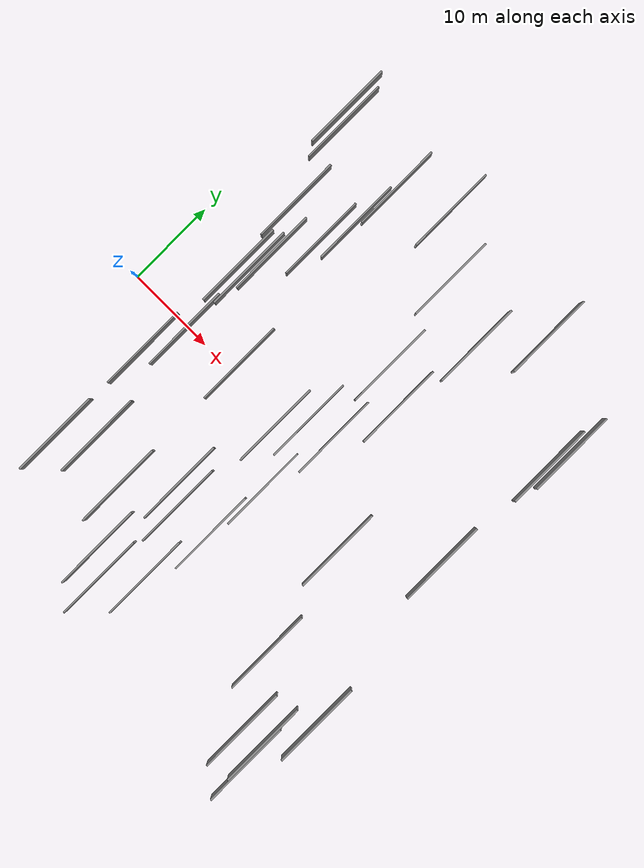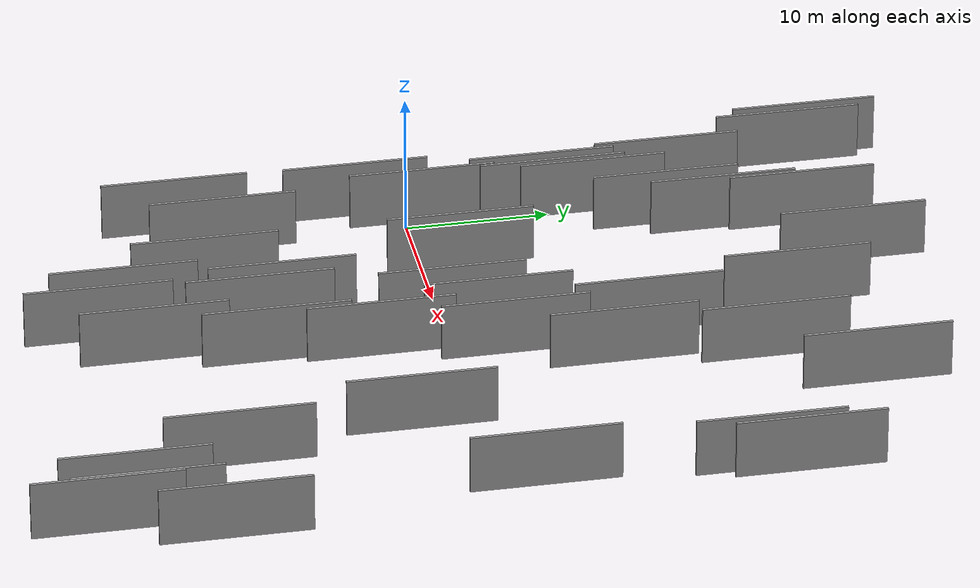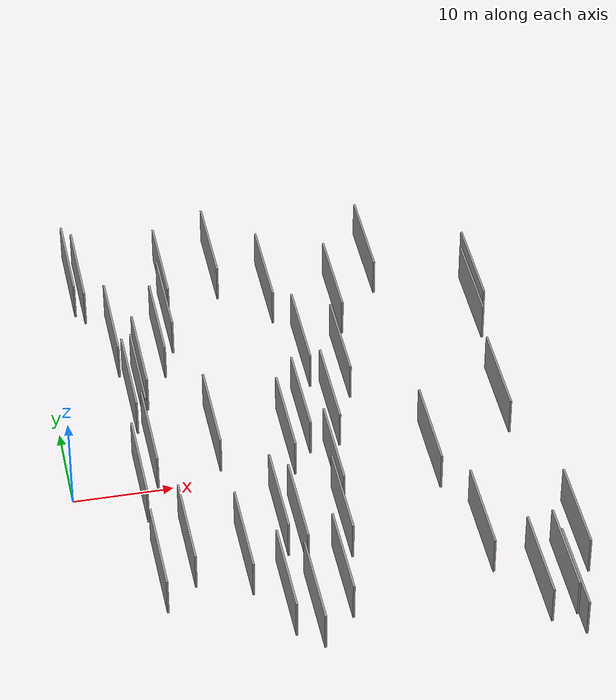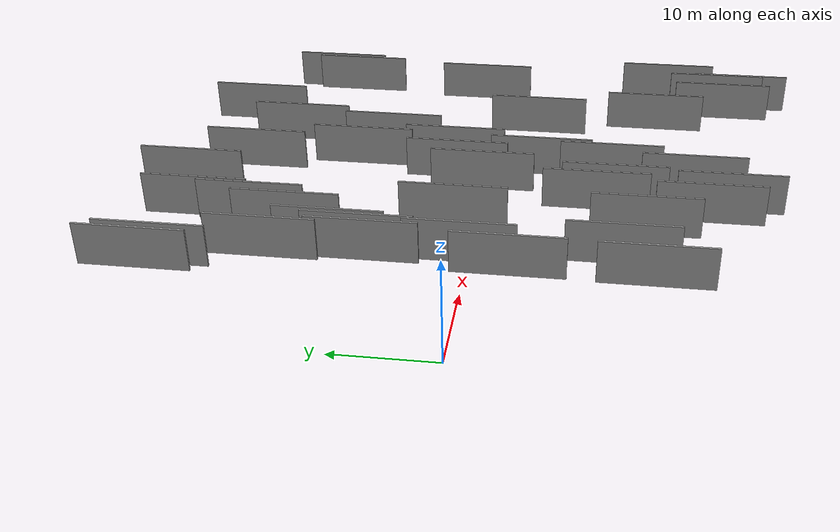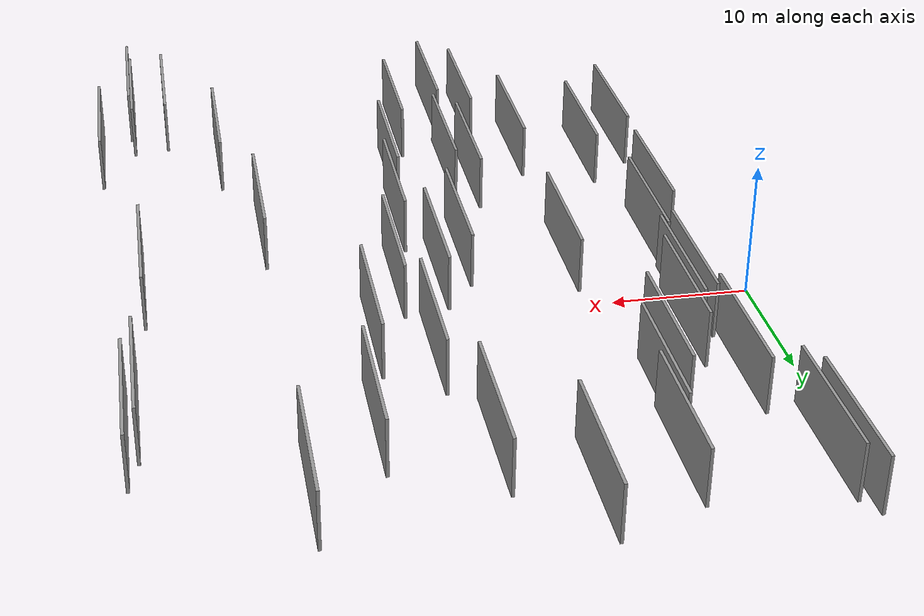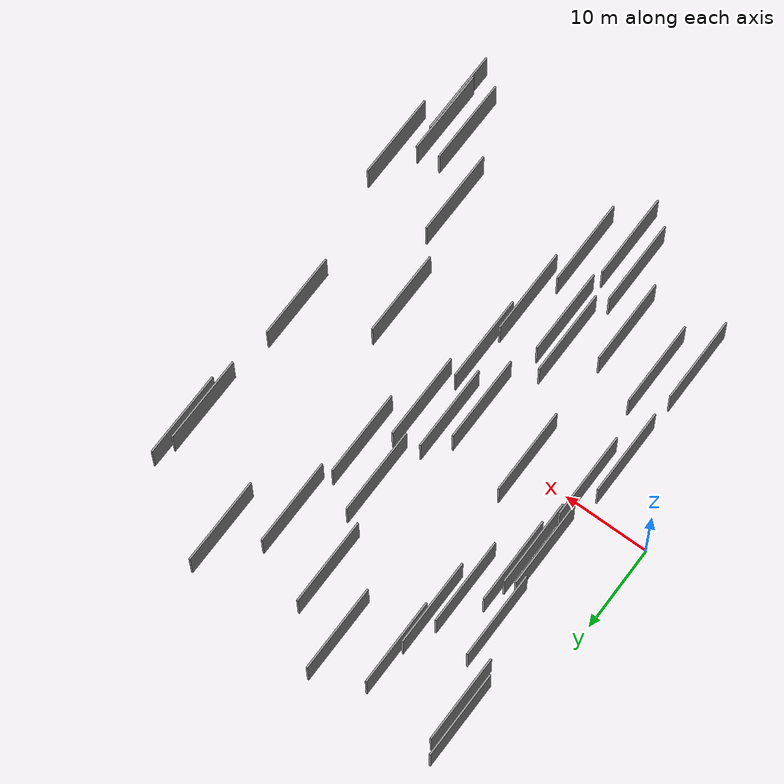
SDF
<sdf version="1.6">
 <world name="default">
  <scene>
   <sky><clouds><speed>12</speed></clouds></sky>
   <ambient>0.4 0.4 0.4 1</ambient>
   <background>0.7 0.7 0.7 1</background>
   <shadows>1</shadows>
  </scene>
  <gravity>0 0 -9.8066</gravity>
  <magnetic_field>6e-06 2.3e-05 -4.2e-05</magnetic_field>
  <physics default="0" name="default_physics" type="ode">
   <ode>
    <solver>
     <type>quick</type>
     <iters>10</iters>
     <sor>1.0</sor>
     <use_dynamic_moi_rescaling>0</use_dynamic_moi_rescaling>
    </solver>
    <constraints>
     <cfm>0</cfm>
     <erp>0.2</erp>
     <contact_max_correcting_vel>100</contact_max_correcting_vel>
     <contact_surface_layer>0.001</contact_surface_layer>
    </constraints>
   </ode>
   <max_step_size>0.004</max_step_size>
   <real_time_factor>1</real_time_factor>
   <real_time_update_rate>250</real_time_update_rate>
  </physics>
  <light name="sun" type="directional">
   <pose>0 0 10 0 0 0</pose>
   <diffuse>0.8 0.8 0.8 1</diffuse>
   <specular>0.2 0.2 0.2 1</specular>
   <attenuation>
    <range>1000</range>
    <constant>0.9</constant>
    <linear>0.01</linear>
    <quadratic>0.001</quadratic>
   </attenuation>
   <direction>-0.5 0.1 -0.9</direction>
  </light>
  <model name="grey_wall_1">
   <static>1</static>
   <pose>7.8358 -0.2921 5.0 0.000000 0.000000 1.570796</pose>
   <link name="link">
    <pose>0 0 2.00 0 0 0</pose>
    <collision name="collision"><geometry><box><size>10.00 0.2 4.00</size></box></geometry></collision>
    <visual name="visual">
     <cast_shadows>0</cast_shadows>
     <geometry><box><size>10.00 0.2 4.00</size></box></geometry>
     <material>
      <script>
       <uri>model://grey_wall/materials/scripts</uri>
       <uri>model://grey_wall/materials/textures</uri>
       <name>vrc/grey_wall</name>
      </script>
     </material>
    </visual>
   </link>
  </model>
  <model name="grey_wall_2">
   <static>1</static>
   <pose>23.2628 2.0227 5.0 0.000000 0.000000 1.570796</pose>
   <link name="link">
    <pose>0 0 2.00 0 0 0</pose>
    <collision name="collision"><geometry><box><size>10.00 0.2 4.00</size></box></geometry></collision>
    <visual name="visual">
     <cast_shadows>0</cast_shadows>
     <geometry><box><size>10.00 0.2 4.00</size></box></geometry>
     <material>
      <script>
       <uri>model://grey_wall/materials/scripts</uri>
       <uri>model://grey_wall/materials/textures</uri>
       <name>vrc/grey_wall</name>
      </script>
     </material>
    </visual>
   </link>
  </model>
  <model name="grey_wall_3">
   <static>1</static>
   <pose>43.1729 -24.5229 5.0 0.000000 0.000000 1.570796</pose>
   <link name="link">
    <pose>0 0 2.00 0 0 0</pose>
    <collision name="collision"><geometry><box><size>10.00 0.2 4.00</size></box></geometry></collision>
    <visual name="visual">
     <cast_shadows>0</cast_shadows>
     <geometry><box><size>10.00 0.2 4.00</size></box></geometry>
     <material>
      <script>
       <uri>model://grey_wall/materials/scripts</uri>
       <uri>model://grey_wall/materials/textures</uri>
       <name>vrc/grey_wall</name>
      </script>
     </material>
    </visual>
   </link>
  </model>
  <model name="grey_wall_4">
   <static>1</static>
   <pose>6.6252 16.9107 5.0 0.000000 0.000000 1.570796</pose>
   <link name="link">
    <pose>0 0 2.00 0 0 0</pose>
    <collision name="collision"><geometry><box><size>10.00 0.2 4.00</size></box></geometry></collision>
    <visual name="visual">
     <cast_shadows>0</cast_shadows>
     <geometry><box><size>10.00 0.2 4.00</size></box></geometry>
     <material>
      <script>
       <uri>model://grey_wall/materials/scripts</uri>
       <uri>model://grey_wall/materials/textures</uri>
       <name>vrc/grey_wall</name>
      </script>
     </material>
    </visual>
   </link>
  </model>
  <model name="grey_wall_5">
   <static>1</static>
   <pose>24.9010 -6.1716 5.0 0.000000 0.000000 1.570796</pose>
   <link name="link">
    <pose>0 0 2.00 0 0 0</pose>
    <collision name="collision"><geometry><box><size>10.00 0.2 4.00</size></box></geometry></collision>
    <visual name="visual">
     <cast_shadows>0</cast_shadows>
     <geometry><box><size>10.00 0.2 4.00</size></box></geometry>
     <material>
      <script>
       <uri>model://grey_wall/materials/scripts</uri>
       <uri>model://grey_wall/materials/textures</uri>
       <name>vrc/grey_wall</name>
      </script>
     </material>
    </visual>
   </link>
  </model>
  <model name="grey_wall_6">
   <static>1</static>
   <pose>8.1049 8.6936 5.0 0.000000 0.000000 1.570796</pose>
   <link name="link">
    <pose>0 0 2.00 0 0 0</pose>
    <collision name="collision"><geometry><box><size>10.00 0.2 4.00</size></box></geometry></collision>
    <visual name="visual">
     <cast_shadows>0</cast_shadows>
     <geometry><box><size>10.00 0.2 4.00</size></box></geometry>
     <material>
      <script>
       <uri>model://grey_wall/materials/scripts</uri>
       <uri>model://grey_wall/materials/textures</uri>
       <name>vrc/grey_wall</name>
      </script>
     </material>
    </visual>
   </link>
  </model>
  <model name="grey_wall_7">
   <static>1</static>
   <pose>14.2185 1.1450 5.0 0.000000 0.000000 1.570796</pose>
   <link name="link">
    <pose>0 0 2.00 0 0 0</pose>
    <collision name="collision"><geometry><box><size>10.00 0.2 4.00</size></box></geometry></collision>
    <visual name="visual">
     <cast_shadows>0</cast_shadows>
     <geometry><box><size>10.00 0.2 4.00</size></box></geometry>
     <material>
      <script>
       <uri>model://grey_wall/materials/scripts</uri>
       <uri>model://grey_wall/materials/textures</uri>
       <name>vrc/grey_wall</name>
      </script>
     </material>
    </visual>
   </link>
  </model>
  <model name="grey_wall_8">
   <static>1</static>
   <pose>4.4644 25.9087 5.0 0.000000 0.000000 1.570796</pose>
   <link name="link">
    <pose>0 0 2.00 0 0 0</pose>
    <collision name="collision"><geometry><box><size>10.00 0.2 4.00</size></box></geometry></collision>
    <visual name="visual">
     <cast_shadows>0</cast_shadows>
     <geometry><box><size>10.00 0.2 4.00</size></box></geometry>
     <material>
      <script>
       <uri>model://grey_wall/materials/scripts</uri>
       <uri>model://grey_wall/materials/textures</uri>
       <name>vrc/grey_wall</name>
      </script>
     </material>
    </visual>
   </link>
  </model>
  <model name="grey_wall_9">
   <static>1</static>
   <pose>43.0906 1.2742 5.0 0.000000 0.000000 1.570796</pose>
   <link name="link">
    <pose>0 0 2.00 0 0 0</pose>
    <collision name="collision"><geometry><box><size>10.00 0.2 4.00</size></box></geometry></collision>
    <visual name="visual">
     <cast_shadows>0</cast_shadows>
     <geometry><box><size>10.00 0.2 4.00</size></box></geometry>
     <material>
      <script>
       <uri>model://grey_wall/materials/scripts</uri>
       <uri>model://grey_wall/materials/textures</uri>
       <name>vrc/grey_wall</name>
      </script>
     </material>
    </visual>
   </link>
  </model>
  <model name="grey_wall_10">
   <static>1</static>
   <pose>29.9802 19.3525 5.0 0.000000 0.000000 1.570796</pose>
   <link name="link">
    <pose>0 0 2.00 0 0 0</pose>
    <collision name="collision"><geometry><box><size>10.00 0.2 4.00</size></box></geometry></collision>
    <visual name="visual">
     <cast_shadows>0</cast_shadows>
     <geometry><box><size>10.00 0.2 4.00</size></box></geometry>
     <material>
      <script>
       <uri>model://grey_wall/materials/scripts</uri>
       <uri>model://grey_wall/materials/textures</uri>
       <name>vrc/grey_wall</name>
      </script>
     </material>
    </visual>
   </link>
  </model>
  <model name="grey_wall_11">
   <static>1</static>
   <pose>40.6441 -24.9664 5.0 0.000000 0.000000 1.570796</pose>
   <link name="link">
    <pose>0 0 2.00 0 0 0</pose>
    <collision name="collision"><geometry><box><size>10.00 0.2 4.00</size></box></geometry></collision>
    <visual name="visual">
     <cast_shadows>0</cast_shadows>
     <geometry><box><size>10.00 0.2 4.00</size></box></geometry>
     <material>
      <script>
       <uri>model://grey_wall/materials/scripts</uri>
       <uri>model://grey_wall/materials/textures</uri>
       <name>vrc/grey_wall</name>
      </script>
     </material>
    </visual>
   </link>
  </model>
  <model name="grey_wall_12">
   <static>1</static>
   <pose>6.0646 -17.0573 5.0 0.000000 0.000000 1.570796</pose>
   <link name="link">
    <pose>0 0 2.00 0 0 0</pose>
    <collision name="collision"><geometry><box><size>10.00 0.2 4.00</size></box></geometry></collision>
    <visual name="visual">
     <cast_shadows>0</cast_shadows>
     <geometry><box><size>10.00 0.2 4.00</size></box></geometry>
     <material>
      <script>
       <uri>model://grey_wall/materials/scripts</uri>
       <uri>model://grey_wall/materials/textures</uri>
       <name>vrc/grey_wall</name>
      </script>
     </material>
    </visual>
   </link>
  </model>
  <model name="grey_wall_13">
   <static>1</static>
   <pose>26.2905 2.5924 5.0 0.000000 0.000000 1.570796</pose>
   <link name="link">
    <pose>0 0 2.00 0 0 0</pose>
    <collision name="collision"><geometry><box><size>10.00 0.2 4.00</size></box></geometry></collision>
    <visual name="visual">
     <cast_shadows>0</cast_shadows>
     <geometry><box><size>10.00 0.2 4.00</size></box></geometry>
     <material>
      <script>
       <uri>model://grey_wall/materials/scripts</uri>
       <uri>model://grey_wall/materials/textures</uri>
       <name>vrc/grey_wall</name>
      </script>
     </material>
    </visual>
   </link>
  </model>
  <model name="grey_wall_14">
   <static>1</static>
   <pose>14.2604 -16.2750 5.0 0.000000 0.000000 1.570796</pose>
   <link name="link">
    <pose>0 0 2.00 0 0 0</pose>
    <collision name="collision"><geometry><box><size>10.00 0.2 4.00</size></box></geometry></collision>
    <visual name="visual">
     <cast_shadows>0</cast_shadows>
     <geometry><box><size>10.00 0.2 4.00</size></box></geometry>
     <material>
      <script>
       <uri>model://grey_wall/materials/scripts</uri>
       <uri>model://grey_wall/materials/textures</uri>
       <name>vrc/grey_wall</name>
      </script>
     </material>
    </visual>
   </link>
  </model>
  <model name="grey_wall_15">
   <static>1</static>
   <pose>34.6566 -5.2586 5.0 0.000000 0.000000 1.570796</pose>
   <link name="link">
    <pose>0 0 2.00 0 0 0</pose>
    <collision name="collision"><geometry><box><size>10.00 0.2 4.00</size></box></geometry></collision>
    <visual name="visual">
     <cast_shadows>0</cast_shadows>
     <geometry><box><size>10.00 0.2 4.00</size></box></geometry>
     <material>
      <script>
       <uri>model://grey_wall/materials/scripts</uri>
       <uri>model://grey_wall/materials/textures</uri>
       <name>vrc/grey_wall</name>
      </script>
     </material>
    </visual>
   </link>
  </model>
  <model name="grey_wall_16">
   <static>1</static>
   <pose>25.1661 11.7924 5.0 0.000000 0.000000 1.570796</pose>
   <link name="link">
    <pose>0 0 2.00 0 0 0</pose>
    <collision name="collision"><geometry><box><size>10.00 0.2 4.00</size></box></geometry></collision>
    <visual name="visual">
     <cast_shadows>0</cast_shadows>
     <geometry><box><size>10.00 0.2 4.00</size></box></geometry>
     <material>
      <script>
       <uri>model://grey_wall/materials/scripts</uri>
       <uri>model://grey_wall/materials/textures</uri>
       <name>vrc/grey_wall</name>
      </script>
     </material>
    </visual>
   </link>
  </model>
  <model name="grey_wall_17">
   <static>1</static>
   <pose>45.6332 -19.2665 5.0 0.000000 0.000000 1.570796</pose>
   <link name="link">
    <pose>0 0 2.00 0 0 0</pose>
    <collision name="collision"><geometry><box><size>10.00 0.2 4.00</size></box></geometry></collision>
    <visual name="visual">
     <cast_shadows>0</cast_shadows>
     <geometry><box><size>10.00 0.2 4.00</size></box></geometry>
     <material>
      <script>
       <uri>model://grey_wall/materials/scripts</uri>
       <uri>model://grey_wall/materials/textures</uri>
       <name>vrc/grey_wall</name>
      </script>
     </material>
    </visual>
   </link>
  </model>
  <model name="grey_wall_18">
   <static>1</static>
   <pose>21.2283 -0.7089 5.0 0.000000 0.000000 1.570796</pose>
   <link name="link">
    <pose>0 0 2.00 0 0 0</pose>
    <collision name="collision"><geometry><box><size>10.00 0.2 4.00</size></box></geometry></collision>
    <visual name="visual">
     <cast_shadows>0</cast_shadows>
     <geometry><box><size>10.00 0.2 4.00</size></box></geometry>
     <material>
      <script>
       <uri>model://grey_wall/materials/scripts</uri>
       <uri>model://grey_wall/materials/textures</uri>
       <name>vrc/grey_wall</name>
      </script>
     </material>
    </visual>
   </link>
  </model>
  <model name="grey_wall_19">
   <static>1</static>
   <pose>3.5937 27.2462 5.0 0.000000 0.000000 1.570796</pose>
   <link name="link">
    <pose>0 0 2.00 0 0 0</pose>
    <collision name="collision"><geometry><box><size>10.00 0.2 4.00</size></box></geometry></collision>
    <visual name="visual">
     <cast_shadows>0</cast_shadows>
     <geometry><box><size>10.00 0.2 4.00</size></box></geometry>
     <material>
      <script>
       <uri>model://grey_wall/materials/scripts</uri>
       <uri>model://grey_wall/materials/textures</uri>
       <name>vrc/grey_wall</name>
      </script>
     </material>
    </visual>
   </link>
  </model>
  <model name="grey_wall_20">
   <static>1</static>
   <pose>43.8578 15.9198 5.0 0.000000 0.000000 1.570796</pose>
   <link name="link">
    <pose>0 0 2.00 0 0 0</pose>
    <collision name="collision"><geometry><box><size>10.00 0.2 4.00</size></box></geometry></collision>
    <visual name="visual">
     <cast_shadows>0</cast_shadows>
     <geometry><box><size>10.00 0.2 4.00</size></box></geometry>
     <material>
      <script>
       <uri>model://grey_wall/materials/scripts</uri>
       <uri>model://grey_wall/materials/textures</uri>
       <name>vrc/grey_wall</name>
      </script>
     </material>
    </visual>
   </link>
  </model>
  <model name="grey_wall_21">
   <static>1</static>
   <pose>6.1931 -4.6150 5.0 0.000000 0.000000 1.570796</pose>
   <link name="link">
    <pose>0 0 2.00 0 0 0</pose>
    <collision name="collision"><geometry><box><size>10.00 0.2 4.00</size></box></geometry></collision>
    <visual name="visual">
     <cast_shadows>0</cast_shadows>
     <geometry><box><size>10.00 0.2 4.00</size></box></geometry>
     <material>
      <script>
       <uri>model://grey_wall/materials/scripts</uri>
       <uri>model://grey_wall/materials/textures</uri>
       <name>vrc/grey_wall</name>
      </script>
     </material>
    </visual>
   </link>
  </model>
  <model name="grey_wall_22">
   <static>1</static>
   <pose>18.4472 27.2551 5.0 0.000000 0.000000 1.570796</pose>
   <link name="link">
    <pose>0 0 2.00 0 0 0</pose>
    <collision name="collision"><geometry><box><size>10.00 0.2 4.00</size></box></geometry></collision>
    <visual name="visual">
     <cast_shadows>0</cast_shadows>
     <geometry><box><size>10.00 0.2 4.00</size></box></geometry>
     <material>
      <script>
       <uri>model://grey_wall/materials/scripts</uri>
       <uri>model://grey_wall/materials/textures</uri>
       <name>vrc/grey_wall</name>
      </script>
     </material>
    </visual>
   </link>
  </model>
  <model name="grey_wall_23">
   <static>1</static>
   <pose>43.3789 -27.1356 5.0 0.000000 0.000000 1.570796</pose>
   <link name="link">
    <pose>0 0 2.00 0 0 0</pose>
    <collision name="collision"><geometry><box><size>10.00 0.2 4.00</size></box></geometry></collision>
    <visual name="visual">
     <cast_shadows>0</cast_shadows>
     <geometry><box><size>10.00 0.2 4.00</size></box></geometry>
     <material>
      <script>
       <uri>model://grey_wall/materials/scripts</uri>
       <uri>model://grey_wall/materials/textures</uri>
       <name>vrc/grey_wall</name>
      </script>
     </material>
    </visual>
   </link>
  </model>
  <model name="grey_wall_24">
   <static>1</static>
   <pose>23.3502 22.2970 5.0 0.000000 0.000000 1.570796</pose>
   <link name="link">
    <pose>0 0 2.00 0 0 0</pose>
    <collision name="collision"><geometry><box><size>10.00 0.2 4.00</size></box></geometry></collision>
    <visual name="visual">
     <cast_shadows>0</cast_shadows>
     <geometry><box><size>10.00 0.2 4.00</size></box></geometry>
     <material>
      <script>
       <uri>model://grey_wall/materials/scripts</uri>
       <uri>model://grey_wall/materials/textures</uri>
       <name>vrc/grey_wall</name>
      </script>
     </material>
    </visual>
   </link>
  </model>
  <model name="grey_wall_25">
   <static>1</static>
   <pose>9.1776 -14.2394 5.0 0.000000 0.000000 1.570796</pose>
   <link name="link">
    <pose>0 0 2.00 0 0 0</pose>
    <collision name="collision"><geometry><box><size>10.00 0.2 4.00</size></box></geometry></collision>
    <visual name="visual">
     <cast_shadows>0</cast_shadows>
     <geometry><box><size>10.00 0.2 4.00</size></box></geometry>
     <material>
      <script>
       <uri>model://grey_wall/materials/scripts</uri>
       <uri>model://grey_wall/materials/textures</uri>
       <name>vrc/grey_wall</name>
      </script>
     </material>
    </visual>
   </link>
  </model>
  <model name="grey_wall_26">
   <static>1</static>
   <pose>8.6530 11.3725 5.0 0.000000 0.000000 1.570796</pose>
   <link name="link">
    <pose>0 0 2.00 0 0 0</pose>
    <collision name="collision"><geometry><box><size>10.00 0.2 4.00</size></box></geometry></collision>
    <visual name="visual">
     <cast_shadows>0</cast_shadows>
     <geometry><box><size>10.00 0.2 4.00</size></box></geometry>
     <material>
      <script>
       <uri>model://grey_wall/materials/scripts</uri>
       <uri>model://grey_wall/materials/textures</uri>
       <name>vrc/grey_wall</name>
      </script>
     </material>
    </visual>
   </link>
  </model>
  <model name="grey_wall_27">
   <static>1</static>
   <pose>17.1920 -22.2053 5.0 0.000000 0.000000 1.570796</pose>
   <link name="link">
    <pose>0 0 2.00 0 0 0</pose>
    <collision name="collision"><geometry><box><size>10.00 0.2 4.00</size></box></geometry></collision>
    <visual name="visual">
     <cast_shadows>0</cast_shadows>
     <geometry><box><size>10.00 0.2 4.00</size></box></geometry>
     <material>
      <script>
       <uri>model://grey_wall/materials/scripts</uri>
       <uri>model://grey_wall/materials/textures</uri>
       <name>vrc/grey_wall</name>
      </script>
     </material>
    </visual>
   </link>
  </model>
  <model name="grey_wall_28">
   <static>1</static>
   <pose>12.5166 19.6094 5.0 0.000000 0.000000 1.570796</pose>
   <link name="link">
    <pose>0 0 2.00 0 0 0</pose>
    <collision name="collision"><geometry><box><size>10.00 0.2 4.00</size></box></geometry></collision>
    <visual name="visual">
     <cast_shadows>0</cast_shadows>
     <geometry><box><size>10.00 0.2 4.00</size></box></geometry>
     <material>
      <script>
       <uri>model://grey_wall/materials/scripts</uri>
       <uri>model://grey_wall/materials/textures</uri>
       <name>vrc/grey_wall</name>
      </script>
     </material>
    </visual>
   </link>
  </model>
  <model name="grey_wall_29">
   <static>1</static>
   <pose>36.8890 -17.6024 5.0 0.000000 0.000000 1.570796</pose>
   <link name="link">
    <pose>0 0 2.00 0 0 0</pose>
    <collision name="collision"><geometry><box><size>10.00 0.2 4.00</size></box></geometry></collision>
    <visual name="visual">
     <cast_shadows>0</cast_shadows>
     <geometry><box><size>10.00 0.2 4.00</size></box></geometry>
     <material>
      <script>
       <uri>model://grey_wall/materials/scripts</uri>
       <uri>model://grey_wall/materials/textures</uri>
       <name>vrc/grey_wall</name>
      </script>
     </material>
    </visual>
   </link>
  </model>
  <model name="grey_wall_30">
   <static>1</static>
   <pose>19.9783 -13.4607 5.0 0.000000 0.000000 1.570796</pose>
   <link name="link">
    <pose>0 0 2.00 0 0 0</pose>
    <collision name="collision"><geometry><box><size>10.00 0.2 4.00</size></box></geometry></collision>
    <visual name="visual">
     <cast_shadows>0</cast_shadows>
     <geometry><box><size>10.00 0.2 4.00</size></box></geometry>
     <material>
      <script>
       <uri>model://grey_wall/materials/scripts</uri>
       <uri>model://grey_wall/materials/textures</uri>
       <name>vrc/grey_wall</name>
      </script>
     </material>
    </visual>
   </link>
  </model>
  <model name="grey_wall_31">
   <static>1</static>
   <pose>28.7470 9.3979 5.0 0.000000 0.000000 1.570796</pose>
   <link name="link">
    <pose>0 0 2.00 0 0 0</pose>
    <collision name="collision"><geometry><box><size>10.00 0.2 4.00</size></box></geometry></collision>
    <visual name="visual">
     <cast_shadows>0</cast_shadows>
     <geometry><box><size>10.00 0.2 4.00</size></box></geometry>
     <material>
      <script>
       <uri>model://grey_wall/materials/scripts</uri>
       <uri>model://grey_wall/materials/textures</uri>
       <name>vrc/grey_wall</name>
      </script>
     </material>
    </visual>
   </link>
  </model>
  <model name="grey_wall_32">
   <static>1</static>
   <pose>12.9572 24.9855 5.0 0.000000 0.000000 1.570796</pose>
   <link name="link">
    <pose>0 0 2.00 0 0 0</pose>
    <collision name="collision"><geometry><box><size>10.00 0.2 4.00</size></box></geometry></collision>
    <visual name="visual">
     <cast_shadows>0</cast_shadows>
     <geometry><box><size>10.00 0.2 4.00</size></box></geometry>
     <material>
      <script>
       <uri>model://grey_wall/materials/scripts</uri>
       <uri>model://grey_wall/materials/textures</uri>
       <name>vrc/grey_wall</name>
      </script>
     </material>
    </visual>
   </link>
  </model>
  <model name="grey_wall_33">
   <static>1</static>
   <pose>18.4549 -11.7194 5.0 0.000000 0.000000 1.570796</pose>
   <link name="link">
    <pose>0 0 2.00 0 0 0</pose>
    <collision name="collision"><geometry><box><size>10.00 0.2 4.00</size></box></geometry></collision>
    <visual name="visual">
     <cast_shadows>0</cast_shadows>
     <geometry><box><size>10.00 0.2 4.00</size></box></geometry>
     <material>
      <script>
       <uri>model://grey_wall/materials/scripts</uri>
       <uri>model://grey_wall/materials/textures</uri>
       <name>vrc/grey_wall</name>
      </script>
     </material>
    </visual>
   </link>
  </model>
  <model name="grey_wall_34">
   <static>1</static>
   <pose>7.1256 8.1168 5.0 0.000000 0.000000 1.570796</pose>
   <link name="link">
    <pose>0 0 2.00 0 0 0</pose>
    <collision name="collision"><geometry><box><size>10.00 0.2 4.00</size></box></geometry></collision>
    <visual name="visual">
     <cast_shadows>0</cast_shadows>
     <geometry><box><size>10.00 0.2 4.00</size></box></geometry>
     <material>
      <script>
       <uri>model://grey_wall/materials/scripts</uri>
       <uri>model://grey_wall/materials/textures</uri>
       <name>vrc/grey_wall</name>
      </script>
     </material>
    </visual>
   </link>
  </model>
  <model name="grey_wall_35">
   <static>1</static>
   <pose>24.3331 -13.0794 5.0 0.000000 0.000000 1.570796</pose>
   <link name="link">
    <pose>0 0 2.00 0 0 0</pose>
    <collision name="collision"><geometry><box><size>10.00 0.2 4.00</size></box></geometry></collision>
    <visual name="visual">
     <cast_shadows>0</cast_shadows>
     <geometry><box><size>10.00 0.2 4.00</size></box></geometry>
     <material>
      <script>
       <uri>model://grey_wall/materials/scripts</uri>
       <uri>model://grey_wall/materials/textures</uri>
       <name>vrc/grey_wall</name>
      </script>
     </material>
    </visual>
   </link>
  </model>
  <model name="grey_wall_36">
   <static>1</static>
   <pose>34.5134 25.1608 5.0 0.000000 0.000000 1.570796</pose>
   <link name="link">
    <pose>0 0 2.00 0 0 0</pose>
    <collision name="collision"><geometry><box><size>10.00 0.2 4.00</size></box></geometry></collision>
    <visual name="visual">
     <cast_shadows>0</cast_shadows>
     <geometry><box><size>10.00 0.2 4.00</size></box></geometry>
     <material>
      <script>
       <uri>model://grey_wall/materials/scripts</uri>
       <uri>model://grey_wall/materials/textures</uri>
       <name>vrc/grey_wall</name>
      </script>
     </material>
    </visual>
   </link>
  </model>
  <model name="grey_wall_37">
   <static>1</static>
   <pose>44.5259 18.3934 5.0 0.000000 0.000000 1.570796</pose>
   <link name="link">
    <pose>0 0 2.00 0 0 0</pose>
    <collision name="collision"><geometry><box><size>10.00 0.2 4.00</size></box></geometry></collision>
    <visual name="visual">
     <cast_shadows>0</cast_shadows>
     <geometry><box><size>10.00 0.2 4.00</size></box></geometry>
     <material>
      <script>
       <uri>model://grey_wall/materials/scripts</uri>
       <uri>model://grey_wall/materials/textures</uri>
       <name>vrc/grey_wall</name>
      </script>
     </material>
    </visual>
   </link>
  </model>
  <model name="grey_wall_38">
   <static>1</static>
   <pose>11.1649 15.9304 5.0 0.000000 0.000000 1.570796</pose>
   <link name="link">
    <pose>0 0 2.00 0 0 0</pose>
    <collision name="collision"><geometry><box><size>10.00 0.2 4.00</size></box></geometry></collision>
    <visual name="visual">
     <cast_shadows>0</cast_shadows>
     <geometry><box><size>10.00 0.2 4.00</size></box></geometry>
     <material>
      <script>
       <uri>model://grey_wall/materials/scripts</uri>
       <uri>model://grey_wall/materials/textures</uri>
       <name>vrc/grey_wall</name>
      </script>
     </material>
    </visual>
   </link>
  </model>
  <model name="grey_wall_39">
   <static>1</static>
   <pose>22.7682 -20.9792 5.0 0.000000 0.000000 1.570796</pose>
   <link name="link">
    <pose>0 0 2.00 0 0 0</pose>
    <collision name="collision"><geometry><box><size>10.00 0.2 4.00</size></box></geometry></collision>
    <visual name="visual">
     <cast_shadows>0</cast_shadows>
     <geometry><box><size>10.00 0.2 4.00</size></box></geometry>
     <material>
      <script>
       <uri>model://grey_wall/materials/scripts</uri>
       <uri>model://grey_wall/materials/textures</uri>
       <name>vrc/grey_wall</name>
      </script>
     </material>
    </visual>
   </link>
  </model>
  <model name="grey_wall_40">
   <static>1</static>
   <pose>19.4740 -24.2242 5.0 0.000000 0.000000 1.570796</pose>
   <link name="link">
    <pose>0 0 2.00 0 0 0</pose>
    <collision name="collision"><geometry><box><size>10.00 0.2 4.00</size></box></geometry></collision>
    <visual name="visual">
     <cast_shadows>0</cast_shadows>
     <geometry><box><size>10.00 0.2 4.00</size></box></geometry>
     <material>
      <script>
       <uri>model://grey_wall/materials/scripts</uri>
       <uri>model://grey_wall/materials/textures</uri>
       <name>vrc/grey_wall</name>
      </script>
     </material>
    </visual>
   </link>
  </model>
 </world>
</sdf>
